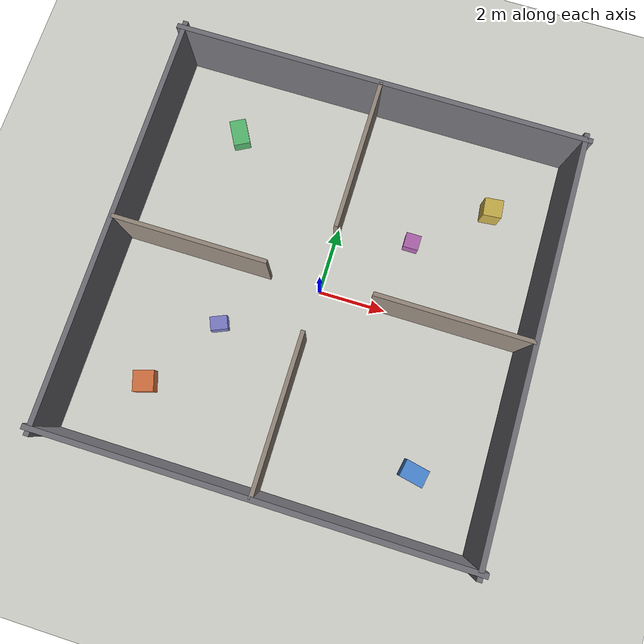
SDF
<?xml version='1.0' encoding='UTF-8'?>
<!-- Compact house (~12x12 m) with 4 rooms, doorways, and boxes. No Fuel deps. -->
<sdf version='1.7'>
  <world name='house_rooms'>
    <physics name="3ms" type="ode">
      <max_step_size>0.003</max_step_size>
      <real_time_factor>1.0</real_time_factor>
    </physics>

    <plugin filename="gz-sim-physics-system" name="gz::sim::systems::Physics"/>
    <plugin filename="gz-sim-user-commands-system" name="gz::sim::systems::UserCommands"/>
    <plugin filename="gz-sim-scene-broadcaster-system" name="gz::sim::systems::SceneBroadcaster"/>
    <plugin filename="gz-sim-sensors-system" name="gz::sim::systems::Sensors">
      <render_engine>ogre2</render_engine>
    </plugin>
    <plugin filename="gz-sim-imu-system" name="gz::sim::systems::Imu"/>

    <scene>
      <ambient>0.6 0.6 0.6 1</ambient>
      <background>0.7 0.8 0.9 1</background>
      <shadows>0</shadows>
    </scene>

    <light name="sun" type="directional">
      <cast_shadows>0</cast_shadows>
      <pose>0 0 10 0 0 0</pose>
      <diffuse>0.9 0.9 0.9 1</diffuse>
      <specular>0.3 0.3 0.3 1</specular>
      <direction>-0.3 0.2 -1</direction>
    </light>

    <model name="ground_plane">
      <static>true</static>
      <link name="link">
        <collision name="collision">
          <geometry><plane><normal>0 0 1</normal><size>40 40</size></plane></geometry>
        </collision>
        <visual name="visual">
          <geometry><plane><normal>0 0 1</normal><size>40 40</size></plane></geometry>
          <material>
            <ambient>0.85 0.85 0.82 1</ambient>
            <diffuse>0.85 0.85 0.82 1</diffuse>
          </material>
        </visual>
      </link>
    </model>

    <!-- ========== Outer walls (12 x 12 m footprint) ========== -->
    <!-- South -->
    <model name="wall_s">
      <static>true</static>
      <pose>0 -6 1 0 0 0</pose>
      <link name="link">
        <collision name="c"><geometry><box><size>12.4 0.15 2</size></box></geometry></collision>
        <visual name="v"><geometry><box><size>12.4 0.15 2</size></box></geometry>
          <material><ambient>0.35 0.35 0.38 1</ambient><diffuse>0.45 0.45 0.48 1</diffuse></material>
        </visual>
      </link>
    </model>
    <!-- North -->
    <model name="wall_n">
      <static>true</static>
      <pose>0 6 1 0 0 0</pose>
      <link name="link">
        <collision name="c"><geometry><box><size>12.4 0.15 2</size></box></geometry></collision>
        <visual name="v"><geometry><box><size>12.4 0.15 2</size></box></geometry>
          <material><ambient>0.35 0.35 0.38 1</ambient><diffuse>0.45 0.45 0.48 1</diffuse></material>
        </visual>
      </link>
    </model>
    <!-- West -->
    <model name="wall_w">
      <static>true</static>
      <pose>-6 0 1 0 0 0</pose>
      <link name="link">
        <collision name="c"><geometry><box><size>0.15 12.4 2</size></box></geometry></collision>
        <visual name="v"><geometry><box><size>0.15 12.4 2</size></box></geometry>
          <material><ambient>0.35 0.35 0.38 1</ambient><diffuse>0.45 0.45 0.48 1</diffuse></material>
        </visual>
      </link>
    </model>
    <!-- East -->
    <model name="wall_e">
      <static>true</static>
      <pose>6 0 1 0 0 0</pose>
      <link name="link">
        <collision name="c"><geometry><box><size>0.15 12.4 2</size></box></geometry></collision>
        <visual name="v"><geometry><box><size>0.15 12.4 2</size></box></geometry>
          <material><ambient>0.35 0.35 0.38 1</ambient><diffuse>0.45 0.45 0.48 1</diffuse></material>
        </visual>
      </link>
    </model>

    <!-- ========== Interior walls (doorways ~2.0 m) ========== -->
    <!-- Vertical divider at x=0: south segment + north segment -->
    <model name="wall_mid_v_s">
      <static>true</static>
      <pose>0 -3.75 1 0 0 0</pose>
      <link name="link">
        <collision name="c"><geometry><box><size>0.12 4.5 2</size></box></geometry></collision>
        <visual name="v"><geometry><box><size>0.12 4.5 2</size></box></geometry>
          <material><ambient>0.5 0.45 0.4 1</ambient><diffuse>0.6 0.55 0.5 1</diffuse></material>
        </visual>
      </link>
    </model>
    <model name="wall_mid_v_n">
      <static>true</static>
      <pose>0 3.75 1 0 0 0</pose>
      <link name="link">
        <collision name="c"><geometry><box><size>0.12 4.5 2</size></box></geometry></collision>
        <visual name="v"><geometry><box><size>0.12 4.5 2</size></box></geometry>
          <material><ambient>0.5 0.45 0.4 1</ambient><diffuse>0.6 0.55 0.5 1</diffuse></material>
        </visual>
      </link>
    </model>
    <!-- Horizontal divider at y=0: west segment + east segment -->
    <model name="wall_mid_h_w">
      <static>true</static>
      <pose>-3.75 0 1 0 0 0</pose>
      <link name="link">
        <collision name="c"><geometry><box><size>4.5 0.12 2</size></box></geometry></collision>
        <visual name="v"><geometry><box><size>4.5 0.12 2</size></box></geometry>
          <material><ambient>0.5 0.45 0.4 1</ambient><diffuse>0.6 0.55 0.5 1</diffuse></material>
        </visual>
      </link>
    </model>
    <model name="wall_mid_h_e">
      <static>true</static>
      <pose>3.75 0 1 0 0 0</pose>
      <link name="link">
        <collision name="c"><geometry><box><size>4.5 0.12 2</size></box></geometry></collision>
        <visual name="v"><geometry><box><size>4.5 0.12 2</size></box></geometry>
          <material><ambient>0.5 0.45 0.4 1</ambient><diffuse>0.6 0.55 0.5 1</diffuse></material>
        </visual>
      </link>
    </model>

    <!-- ========== Boxes (obstacles) ========== -->
    <model name="box_sw">
      <static>true</static>
      <pose>-4 -4 0.25 0 0 0.3</pose>
      <link name="link">
        <collision name="c"><geometry><box><size>0.6 0.6 0.5</size></box></geometry></collision>
        <visual name="v"><geometry><box><size>0.6 0.6 0.5</size></box></geometry>
          <material><ambient>0.7 0.35 0.2 1</ambient><diffuse>0.85 0.45 0.25 1</diffuse></material>
        </visual>
      </link>
    </model>
    <model name="box_se">
      <static>true</static>
      <pose>4 -4.2 0.3 0 0 -0.2</pose>
      <link name="link">
        <collision name="c"><geometry><box><size>0.7 0.5 0.6</size></box></geometry></collision>
        <visual name="v"><geometry><box><size>0.7 0.5 0.6</size></box></geometry>
          <material><ambient>0.2 0.45 0.7 1</ambient><diffuse>0.3 0.55 0.85 1</diffuse></material>
        </visual>
      </link>
    </model>
    <model name="box_nw">
      <static>true</static>
      <pose>-3.8 4 0.2 0 0 0.5</pose>
      <link name="link">
        <collision name="c"><geometry><box><size>0.5 0.8 0.4</size></box></geometry></collision>
        <visual name="v"><geometry><box><size>0.5 0.8 0.4</size></box></geometry>
          <material><ambient>0.25 0.6 0.35 1</ambient><diffuse>0.35 0.75 0.45 1</diffuse></material>
        </visual>
      </link>
    </model>
    <model name="box_ne">
      <static>true</static>
      <pose>4.2 3.8 0.35 0 0 0.1</pose>
      <link name="link">
        <collision name="c"><geometry><box><size>0.55 0.55 0.7</size></box></geometry></collision>
        <visual name="v"><geometry><box><size>0.55 0.55 0.7</size></box></geometry>
          <material><ambient>0.65 0.55 0.2 1</ambient><diffuse>0.8 0.7 0.3 1</diffuse></material>
        </visual>
      </link>
    </model>
    <model name="box_hall">
      <static>true</static>
      <pose>2.2 2.2 0.2 0 0 0</pose>
      <link name="link">
        <collision name="c"><geometry><box><size>0.45 0.45 0.4</size></box></geometry></collision>
        <visual name="v"><geometry><box><size>0.45 0.45 0.4</size></box></geometry>
          <material><ambient>0.55 0.3 0.55 1</ambient><diffuse>0.7 0.4 0.7 1</diffuse></material>
        </visual>
      </link>
    </model>
    <model name="box_hall2">
      <static>true</static>
      <pose>-2.5 -1.8 0.22 0 0 0.4</pose>
      <link name="link">
        <collision name="c"><geometry><box><size>0.5 0.4 0.45</size></box></geometry></collision>
        <visual name="v"><geometry><box><size>0.5 0.4 0.45</size></box></geometry>
          <material><ambient>0.4 0.4 0.65 1</ambient><diffuse>0.5 0.5 0.8 1</diffuse></material>
        </visual>
      </link>
    </model>

  </world>
</sdf>
